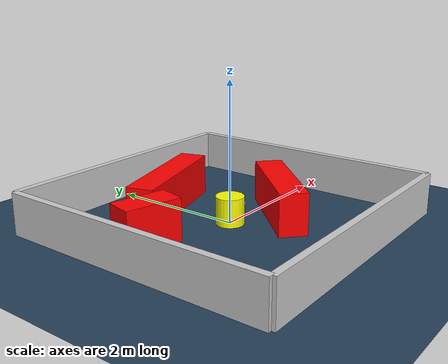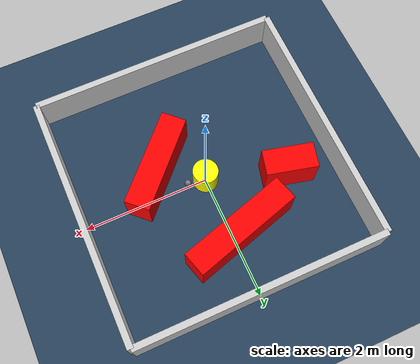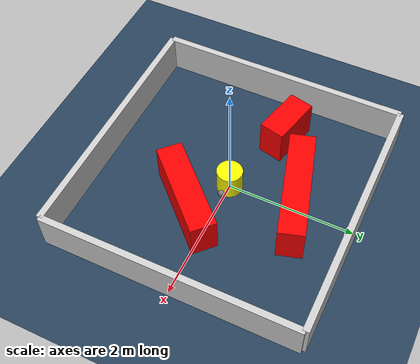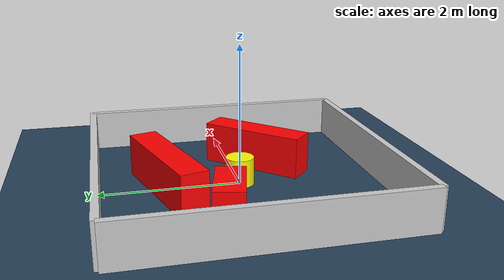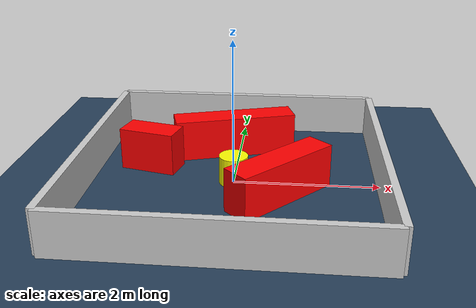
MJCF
<?xml version="1.0" ?>
<mujoco model="generated_environment">
  <option timestep="0.01" integrator="RK4" cone="elliptic"/>
  <default>
    <geom density="1"/>
  </default>
  <asset>
    <texture builtin="gradient" height="3072" rgb1="0.3 0.5 0.7" rgb2="0 0 0" type="skybox" width="512"/>
    <texture builtin="checker" height="300" mark="edge" markrgb="0.8 0.8 0.8" name="groundplane" rgb1="0.2 0.3 0.4" rgb2="0.1 0.2 0.3" type="2d" width="300"/>
    <material name="groundplane" reflectance="0.2" texrepeat="5 5" texture="groundplane" texuniform="true"/>
    <material name="robot" rgba="0.0 1.0 0.0 1"/>
  </asset>
  <worldbody>
    <light dir="0 0 -1" directional="true" pos="0 0 1.5"/>
    <geom condim="4" friction="1.0 0.005 0.001" material="groundplane" name="floor" size="0 0 0.05" type="plane"/>
    <body name="walls">
      <geom name="wall_1" condim="4" pos="-2.0 0.0 0.3" rgba="0.800000011920929 0.800000011920929 0.800000011920929 1.0" size="0.05 2.0 0.3" type="box"/>
      <geom name="wall_2" condim="4" pos="2.0 0.0 0.3" rgba="0.800000011920929 0.800000011920929 0.800000011920929 1.0" size="0.05 2.0 0.3" type="box"/>
      <geom name="wall_3" condim="4" pos="0.0 -2.0 0.3" rgba="0.800000011920929 0.800000011920929 0.800000011920929 1.0" size="2.0 0.05 0.3" type="box"/>
      <geom name="wall_4" condim="4" pos="0.0 2.0 0.3" rgba="0.800000011920929 0.800000011920929 0.800000011920929 1.0" size="2.0 0.05 0.3" type="box"/>
    </body>
    <body name="robot">
      <joint name="joint_x" type="slide" pos="0 0 0" axis="1 0 0"/>
      <joint name="joint_y" type="slide" pos="0 0 0" axis="0 1 0"/>
      <geom name="robot" type="sphere" pos="0.3 0.0 0.2" size="0.05" mass="5." friction="1.0 0.005 0.0001" condim="4" rgba="0.5 0.5 0.5 1.0"/>
      <site name="sensor_ball"/>
    </body>
    <body name="obstacle_movable_1">
      <geom name="obstacle_movable_1" condim="4" pos="0.0 0.0 0.2" euler="0 0 0.0" friction="1.0 0.005 0.001" rgba="1.0 1.0 0.0 1.0" size="0.2 0.2 0.0" type="cylinder" mass="0.1"/>
      <joint type="free"/>
    </body>
    <body name="obstacle_2_static">
      <geom name="obstacle_2_static" condim="4" pos="-0.09578204947670899 1.0403440258055292 0.3" euler="0 0 16.51993419441645" friction="1.0 0.005 0.001" rgba="1 0 0 1" size="0.8946096197809259 0.2 0.3" type="box"/>
    </body>
    <body name="obstacle_3_static">
      <geom name="obstacle_3_static" condim="4" pos="-1.2187944517114218 0.4049911379349329 0.3" euler="0 0 166.30264259984148" friction="1.0 0.005 0.001" rgba="1 0 0 1" size="0.40168515455837484 0.2 0.3" type="box"/>
    </body>
    <body name="obstacle_4_static">
      <geom name="obstacle_4_static" condim="4" pos="0.640207294029808 -0.401255166801896 0.3" euler="0 0 226.22736410819584" friction="1.0 0.005 0.001" rgba="1 0 0 1" size="0.773042880754045 0.2 0.3" type="box"/>
    </body>
  </worldbody>
  <actuator>
    <motor name="actuator_x" joint="joint_x" gear="1" ctrlrange="-1 1"/>
    <motor name="actuator_y" joint="joint_y" gear="1" ctrlrange="-1 1"/>
  </actuator>
</mujoco>
